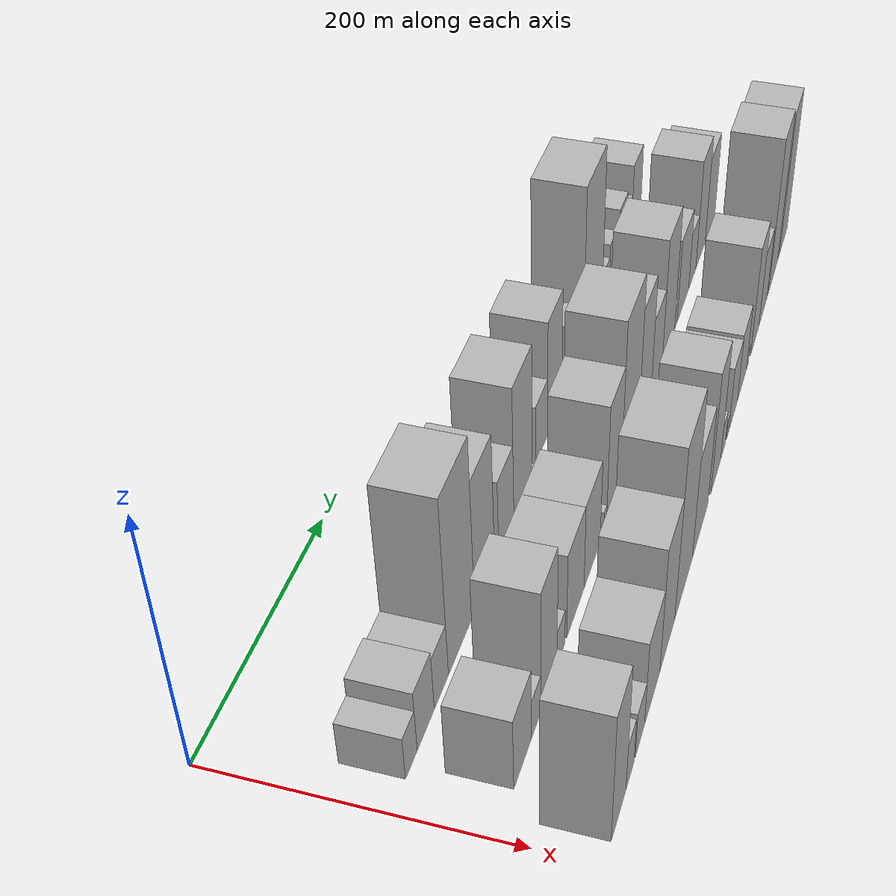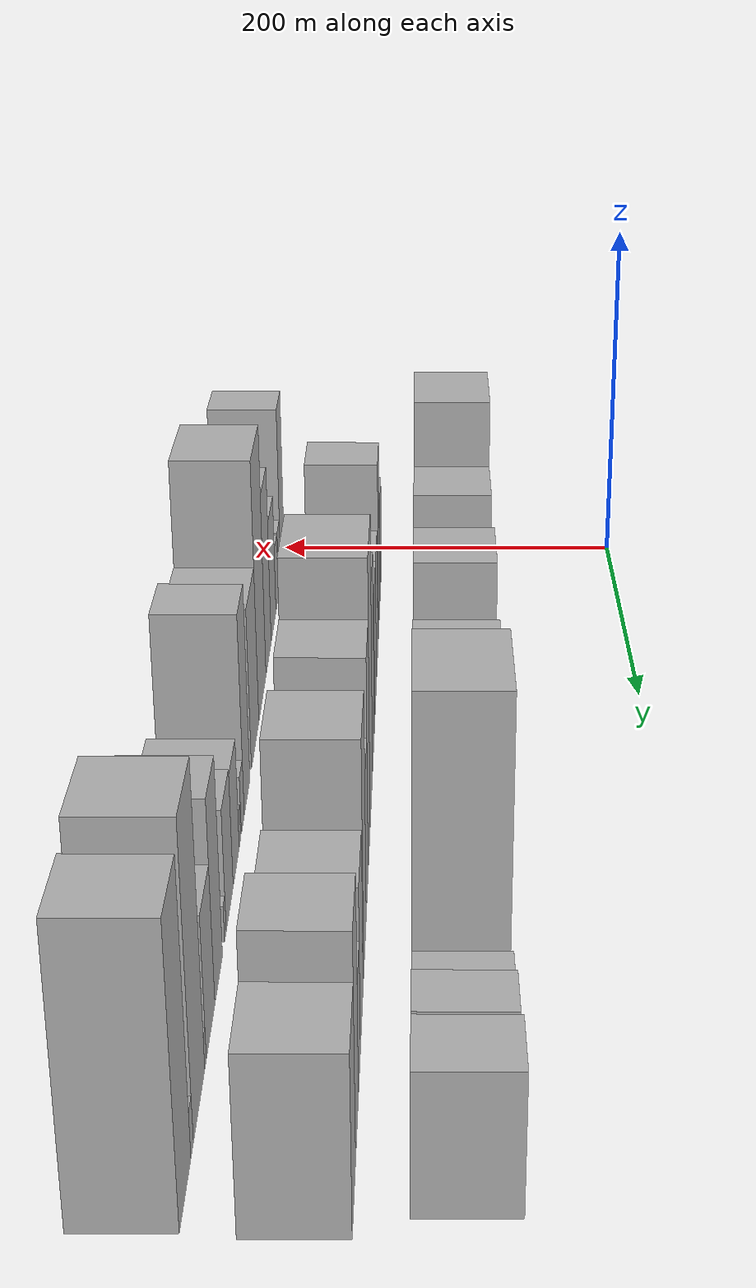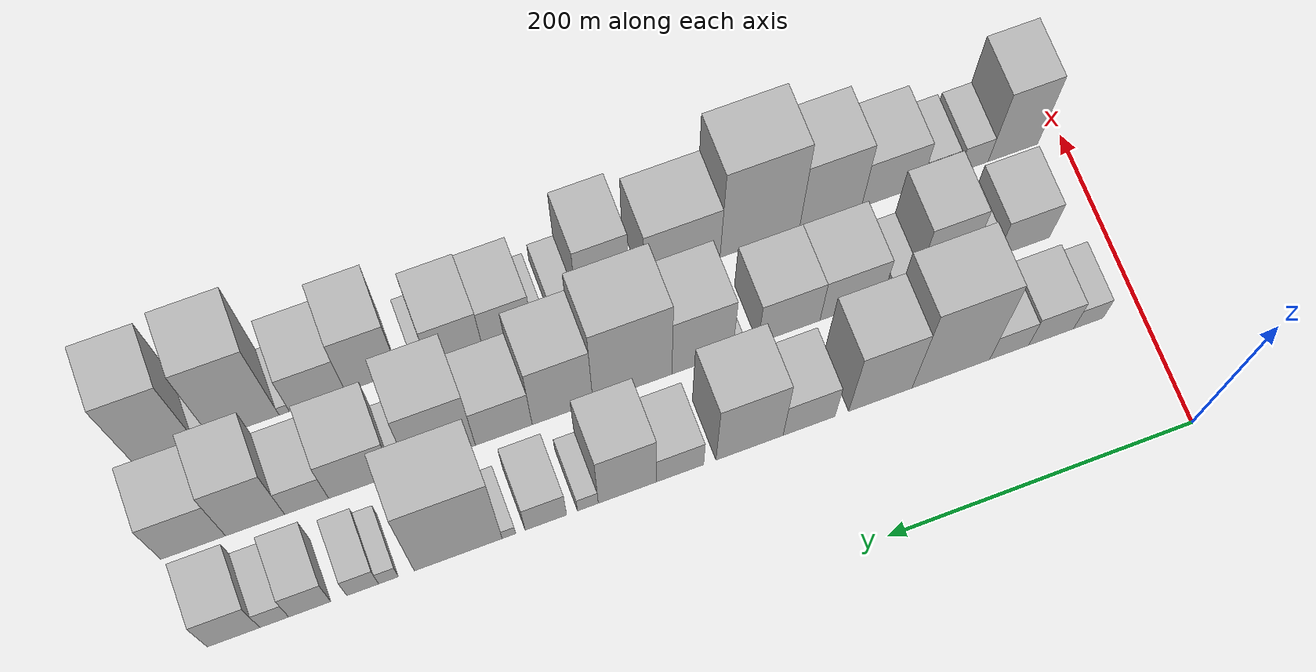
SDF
<sdf version="1.6">
 <world name="default">
  <model name="building_20">
   <static>1</static>
   <pose>100.0000 33.8329 0 0.000000 0.000000 0.000000</pose>
   <link name="link">
    <pose>0 0 18.00 0 0 0</pose>
    <collision name="collision"><geometry><box><size>40.0000 19.9525 36.0000</size></box></geometry></collision>
    <visual name="visual">
     <cast_shadows>0</cast_shadows>
     <geometry><box><size>40.0000 19.9525 36.0000</size></box></geometry>
     <material>
      <script>
       <uri>model://HANNAS_wall/materials/scripts</uri>
       <uri>model://HANNAS_wall/materials/textures</uri>
       <name>vrc/HANNAS_wall</name>
      </script>
     </material>
    </visual>
   </link>
  </model>
  <model name="building_21">
   <static>1</static>
   <pose>100.0000 58.8355 0 0.000000 0.000000 0.000000</pose>
   <link name="link">
    <pose>0 0 25.50 0 0 0</pose>
    <collision name="collision"><geometry><box><size>40.0000 30.0528 51.0000</size></box></geometry></collision>
    <visual name="visual">
     <cast_shadows>0</cast_shadows>
     <geometry><box><size>40.0000 30.0528 51.0000</size></box></geometry>
     <material>
      <script>
       <uri>model://HANNAS_wall/materials/scripts</uri>
       <uri>model://HANNAS_wall/materials/textures</uri>
       <name>vrc/HANNAS_wall</name>
      </script>
     </material>
    </visual>
   </link>
  </model>
  <model name="building_22">
   <static>1</static>
   <pose>100.0000 86.9364 0 0.000000 0.000000 0.000000</pose>
   <link name="link">
    <pose>0 0 22.50 0 0 0</pose>
    <collision name="collision"><geometry><box><size>40.0000 26.1490 45.0000</size></box></geometry></collision>
    <visual name="visual">
     <cast_shadows>0</cast_shadows>
     <geometry><box><size>40.0000 26.1490 45.0000</size></box></geometry>
     <material>
      <script>
       <uri>model://HANNAS_wall/materials/scripts</uri>
       <uri>model://HANNAS_wall/materials/textures</uri>
       <name>vrc/HANNAS_wall</name>
      </script>
     </material>
    </visual>
   </link>
  </model>
  <model name="building_23">
   <static>1</static>
   <pose>100.0000 125.7949 0 0.000000 0.000000 0.000000</pose>
   <link name="link">
    <pose>0 0 73.50 0 0 0</pose>
    <collision name="collision"><geometry><box><size>40.0000 51.5680 147.0000</size></box></geometry></collision>
    <visual name="visual">
     <cast_shadows>0</cast_shadows>
     <geometry><box><size>40.0000 51.5680 147.0000</size></box></geometry>
     <material>
      <script>
       <uri>model://HANNAS_wall/materials/scripts</uri>
       <uri>model://HANNAS_wall/materials/textures</uri>
       <name>vrc/HANNAS_wall</name>
      </script>
     </material>
    </visual>
   </link>
  </model>
  <model name="building_24">
   <static>1</static>
   <pose>100.0000 172.5010 0 0.000000 0.000000 0.000000</pose>
   <link name="link">
    <pose>0 0 55.50 0 0 0</pose>
    <collision name="collision"><geometry><box><size>40.0000 41.8441 111.0000</size></box></geometry></collision>
    <visual name="visual">
     <cast_shadows>0</cast_shadows>
     <geometry><box><size>40.0000 41.8441 111.0000</size></box></geometry>
     <material>
      <script>
       <uri>model://HANNAS_wall/materials/scripts</uri>
       <uri>model://HANNAS_wall/materials/textures</uri>
       <name>vrc/HANNAS_wall</name>
      </script>
     </material>
    </visual>
   </link>
  </model>
  <model name="building_25">
   <static>1</static>
   <pose>100.0000 219.4395 0 0.000000 0.000000 0.000000</pose>
   <link name="link">
    <pose>0 0 31.50 0 0 0</pose>
    <collision name="collision"><geometry><box><size>40.0000 34.0330 63.0000</size></box></geometry></collision>
    <visual name="visual">
     <cast_shadows>0</cast_shadows>
     <geometry><box><size>40.0000 34.0330 63.0000</size></box></geometry>
     <material>
      <script>
       <uri>model://HANNAS_wall/materials/scripts</uri>
       <uri>model://HANNAS_wall/materials/textures</uri>
       <name>vrc/HANNAS_wall</name>
      </script>
     </material>
    </visual>
   </link>
  </model>
  <model name="building_26">
   <static>1</static>
   <pose>100.0000 258.3282 0 0.000000 0.000000 0.000000</pose>
   <link name="link">
    <pose>0 0 55.50 0 0 0</pose>
    <collision name="collision"><geometry><box><size>40.0000 43.7445 111.0000</size></box></geometry></collision>
    <visual name="visual">
     <cast_shadows>0</cast_shadows>
     <geometry><box><size>40.0000 43.7445 111.0000</size></box></geometry>
     <material>
      <script>
       <uri>model://HANNAS_wall/materials/scripts</uri>
       <uri>model://HANNAS_wall/materials/textures</uri>
       <name>vrc/HANNAS_wall</name>
      </script>
     </material>
    </visual>
   </link>
  </model>
  <model name="building_27">
   <static>1</static>
   <pose>100.0000 303.4414 0 0.000000 0.000000 0.000000</pose>
   <link name="link">
    <pose>0 0 25.50 0 0 0</pose>
    <collision name="collision"><geometry><box><size>40.0000 30.4819 51.0000</size></box></geometry></collision>
    <visual name="visual">
     <cast_shadows>0</cast_shadows>
     <geometry><box><size>40.0000 30.4819 51.0000</size></box></geometry>
     <material>
      <script>
       <uri>model://HANNAS_wall/materials/scripts</uri>
       <uri>model://HANNAS_wall/materials/textures</uri>
       <name>vrc/HANNAS_wall</name>
      </script>
     </material>
    </visual>
   </link>
  </model>
  <model name="building_28">
   <static>1</static>
   <pose>100.0000 337.4438 0 0.000000 0.000000 0.000000</pose>
   <link name="link">
    <pose>0 0 49.50 0 0 0</pose>
    <collision name="collision"><geometry><box><size>40.0000 37.5230 99.0000</size></box></geometry></collision>
    <visual name="visual">
     <cast_shadows>0</cast_shadows>
     <geometry><box><size>40.0000 37.5230 99.0000</size></box></geometry>
     <material>
      <script>
       <uri>model://HANNAS_wall/materials/scripts</uri>
       <uri>model://HANNAS_wall/materials/textures</uri>
       <name>vrc/HANNAS_wall</name>
      </script>
     </material>
    </visual>
   </link>
  </model>
  <model name="building_29">
   <static>1</static>
   <pose>100.0000 362.8427 0 0.000000 0.000000 0.000000</pose>
   <link name="link">
    <pose>0 0 13.50 0 0 0</pose>
    <collision name="collision"><geometry><box><size>40.0000 13.2747 27.0000</size></box></geometry></collision>
    <visual name="visual">
     <cast_shadows>0</cast_shadows>
     <geometry><box><size>40.0000 13.2747 27.0000</size></box></geometry>
     <material>
      <script>
       <uri>model://HANNAS_wall/materials/scripts</uri>
       <uri>model://HANNAS_wall/materials/textures</uri>
       <name>vrc/HANNAS_wall</name>
      </script>
     </material>
    </visual>
   </link>
  </model>
  <model name="building_30">
   <static>1</static>
   <pose>100.0000 389.7202 0 0.000000 0.000000 0.000000</pose>
   <link name="link">
    <pose>0 0 25.50 0 0 0</pose>
    <collision name="collision"><geometry><box><size>40.0000 26.4803 51.0000</size></box></geometry></collision>
    <visual name="visual">
     <cast_shadows>0</cast_shadows>
     <geometry><box><size>40.0000 26.4803 51.0000</size></box></geometry>
     <material>
      <script>
       <uri>model://HANNAS_wall/materials/scripts</uri>
       <uri>model://HANNAS_wall/materials/textures</uri>
       <name>vrc/HANNAS_wall</name>
      </script>
     </material>
    </visual>
   </link>
  </model>
  <model name="building_31">
   <static>1</static>
   <pose>100.0000 413.2818 0 0.000000 0.000000 0.000000</pose>
   <link name="link">
    <pose>0 0 9.00 0 0 0</pose>
    <collision name="collision"><geometry><box><size>40.0000 8.6429 18.0000</size></box></geometry></collision>
    <visual name="visual">
     <cast_shadows>0</cast_shadows>
     <geometry><box><size>40.0000 8.6429 18.0000</size></box></geometry>
     <material>
      <script>
       <uri>model://HANNAS_wall/materials/scripts</uri>
       <uri>model://HANNAS_wall/materials/textures</uri>
       <name>vrc/HANNAS_wall</name>
      </script>
     </material>
    </visual>
   </link>
  </model>
  <model name="building_32">
   <static>1</static>
   <pose>100.0000 445.4660 0 0.000000 0.000000 0.000000</pose>
   <link name="link">
    <pose>0 0 70.50 0 0 0</pose>
    <collision name="collision"><geometry><box><size>40.0000 55.7255 141.0000</size></box></geometry></collision>
    <visual name="visual">
     <cast_shadows>0</cast_shadows>
     <geometry><box><size>40.0000 55.7255 141.0000</size></box></geometry>
     <material>
      <script>
       <uri>model://HANNAS_wall/materials/scripts</uri>
       <uri>model://HANNAS_wall/materials/textures</uri>
       <name>vrc/HANNAS_wall</name>
      </script>
     </material>
    </visual>
   </link>
  </model>
  <model name="building_33">
   <static>1</static>
   <pose>100.0000 489.5801 0 0.000000 0.000000 0.000000</pose>
   <link name="link">
    <pose>0 0 13.50 0 0 0</pose>
    <collision name="collision"><geometry><box><size>40.0000 12.5028 27.0000</size></box></geometry></collision>
    <visual name="visual">
     <cast_shadows>0</cast_shadows>
     <geometry><box><size>40.0000 12.5028 27.0000</size></box></geometry>
     <material>
      <script>
       <uri>model://HANNAS_wall/materials/scripts</uri>
       <uri>model://HANNAS_wall/materials/textures</uri>
       <name>vrc/HANNAS_wall</name>
      </script>
     </material>
    </visual>
   </link>
  </model>
  <model name="building_34">
   <static>1</static>
   <pose>100.0000 505.8345 0 0.000000 0.000000 0.000000</pose>
   <link name="link">
    <pose>0 0 19.50 0 0 0</pose>
    <collision name="collision"><geometry><box><size>40.0000 20.0061 39.0000</size></box></geometry></collision>
    <visual name="visual">
     <cast_shadows>0</cast_shadows>
     <geometry><box><size>40.0000 20.0061 39.0000</size></box></geometry>
     <material>
      <script>
       <uri>model://HANNAS_wall/materials/scripts</uri>
       <uri>model://HANNAS_wall/materials/textures</uri>
       <name>vrc/HANNAS_wall</name>
      </script>
     </material>
    </visual>
   </link>
  </model>
  <model name="building_35">
   <static>1</static>
   <pose>100.0000 538.9718 0 0.000000 0.000000 0.000000</pose>
   <link name="link">
    <pose>0 0 25.50 0 0 0</pose>
    <collision name="collision"><geometry><box><size>40.0000 26.2685 51.0000</size></box></geometry></collision>
    <visual name="visual">
     <cast_shadows>0</cast_shadows>
     <geometry><box><size>40.0000 26.2685 51.0000</size></box></geometry>
     <material>
      <script>
       <uri>model://HANNAS_wall/materials/scripts</uri>
       <uri>model://HANNAS_wall/materials/textures</uri>
       <name>vrc/HANNAS_wall</name>
      </script>
     </material>
    </visual>
   </link>
  </model>
  <model name="building_36">
   <static>1</static>
   <pose>100.0000 561.1480 0 0.000000 0.000000 0.000000</pose>
   <link name="link">
    <pose>0 0 18.00 0 0 0</pose>
    <collision name="collision"><geometry><box><size>40.0000 18.0839 36.0000</size></box></geometry></collision>
    <visual name="visual">
     <cast_shadows>0</cast_shadows>
     <geometry><box><size>40.0000 18.0839 36.0000</size></box></geometry>
     <material>
      <script>
       <uri>model://HANNAS_wall/materials/scripts</uri>
       <uri>model://HANNAS_wall/materials/textures</uri>
       <name>vrc/HANNAS_wall</name>
      </script>
     </material>
    </visual>
   </link>
  </model>
  <model name="building_37">
   <static>1</static>
   <pose>100.0000 586.4755 0 0.000000 0.000000 0.000000</pose>
   <link name="link">
    <pose>0 0 31.50 0 0 0</pose>
    <collision name="collision"><geometry><box><size>40.0000 32.5711 63.0000</size></box></geometry></collision>
    <visual name="visual">
     <cast_shadows>0</cast_shadows>
     <geometry><box><size>40.0000 32.5711 63.0000</size></box></geometry>
     <material>
      <script>
       <uri>model://HANNAS_wall/materials/scripts</uri>
       <uri>model://HANNAS_wall/materials/textures</uri>
       <name>vrc/HANNAS_wall</name>
      </script>
     </material>
    </visual>
   </link>
  </model>
  <model name="building_57">
   <static>1</static>
   <pose>160.0000 51.7332 0 0.000000 0.000000 0.000000</pose>
   <link name="link">
    <pose>0 0 30.00 0 0 0</pose>
    <collision name="collision"><geometry><box><size>40.0000 35.6672 60.0000</size></box></geometry></collision>
    <visual name="visual">
     <cast_shadows>0</cast_shadows>
     <geometry><box><size>40.0000 35.6672 60.0000</size></box></geometry>
     <material>
      <script>
       <uri>model://HANNAS_wall/materials/scripts</uri>
       <uri>model://HANNAS_wall/materials/textures</uri>
       <name>vrc/HANNAS_wall</name>
      </script>
     </material>
    </visual>
   </link>
  </model>
  <model name="building_58">
   <static>1</static>
   <pose>160.0000 79.1567 0 0.000000 0.000000 0.000000</pose>
   <link name="link">
    <pose>0 0 16.50 0 0 0</pose>
    <collision name="collision"><geometry><box><size>40.0000 19.1798 33.0000</size></box></geometry></collision>
    <visual name="visual">
     <cast_shadows>0</cast_shadows>
     <geometry><box><size>40.0000 19.1798 33.0000</size></box></geometry>
     <material>
      <script>
       <uri>model://HANNAS_wall/materials/scripts</uri>
       <uri>model://HANNAS_wall/materials/textures</uri>
       <name>vrc/HANNAS_wall</name>
      </script>
     </material>
    </visual>
   </link>
  </model>
  <model name="building_59">
   <static>1</static>
   <pose>160.0000 106.7141 0 0.000000 0.000000 0.000000</pose>
   <link name="link">
    <pose>0 0 51.00 0 0 0</pose>
    <collision name="collision"><geometry><box><size>40.0000 35.9351 102.0000</size></box></geometry></collision>
    <visual name="visual">
     <cast_shadows>0</cast_shadows>
     <geometry><box><size>40.0000 35.9351 102.0000</size></box></geometry>
     <material>
      <script>
       <uri>model://HANNAS_wall/materials/scripts</uri>
       <uri>model://HANNAS_wall/materials/textures</uri>
       <name>vrc/HANNAS_wall</name>
      </script>
     </material>
    </visual>
   </link>
  </model>
  <model name="building_60">
   <static>1</static>
   <pose>160.0000 133.5646 0 0.000000 0.000000 0.000000</pose>
   <link name="link">
    <pose>0 0 15.00 0 0 0</pose>
    <collision name="collision"><geometry><box><size>40.0000 17.7658 30.0000</size></box></geometry></collision>
    <visual name="visual">
     <cast_shadows>0</cast_shadows>
     <geometry><box><size>40.0000 17.7658 30.0000</size></box></geometry>
     <material>
      <script>
       <uri>model://HANNAS_wall/materials/scripts</uri>
       <uri>model://HANNAS_wall/materials/textures</uri>
       <name>vrc/HANNAS_wall</name>
      </script>
     </material>
    </visual>
   </link>
  </model>
  <model name="building_61">
   <static>1</static>
   <pose>160.0000 167.3708 0 0.000000 0.000000 0.000000</pose>
   <link name="link">
    <pose>0 0 36.00 0 0 0</pose>
    <collision name="collision"><geometry><box><size>40.0000 41.8467 72.0000</size></box></geometry></collision>
    <visual name="visual">
     <cast_shadows>0</cast_shadows>
     <geometry><box><size>40.0000 41.8467 72.0000</size></box></geometry>
     <material>
      <script>
       <uri>model://HANNAS_wall/materials/scripts</uri>
       <uri>model://HANNAS_wall/materials/textures</uri>
       <name>vrc/HANNAS_wall</name>
      </script>
     </material>
    </visual>
   </link>
  </model>
  <model name="building_62">
   <static>1</static>
   <pose>160.0000 208.8437 0 0.000000 0.000000 0.000000</pose>
   <link name="link">
    <pose>0 0 36.00 0 0 0</pose>
    <collision name="collision"><geometry><box><size>40.0000 41.0991 72.0000</size></box></geometry></collision>
    <visual name="visual">
     <cast_shadows>0</cast_shadows>
     <geometry><box><size>40.0000 41.0991 72.0000</size></box></geometry>
     <material>
      <script>
       <uri>model://HANNAS_wall/materials/scripts</uri>
       <uri>model://HANNAS_wall/materials/textures</uri>
       <name>vrc/HANNAS_wall</name>
      </script>
     </material>
    </visual>
   </link>
  </model>
  <model name="building_63">
   <static>1</static>
   <pose>160.0000 242.2658 0 0.000000 0.000000 0.000000</pose>
   <link name="link">
    <pose>0 0 9.00 0 0 0</pose>
    <collision name="collision"><geometry><box><size>40.0000 7.7452 18.0000</size></box></geometry></collision>
    <visual name="visual">
     <cast_shadows>0</cast_shadows>
     <geometry><box><size>40.0000 7.7452 18.0000</size></box></geometry>
     <material>
      <script>
       <uri>model://HANNAS_wall/materials/scripts</uri>
       <uri>model://HANNAS_wall/materials/textures</uri>
       <name>vrc/HANNAS_wall</name>
      </script>
     </material>
    </visual>
   </link>
  </model>
  <model name="building_64">
   <static>1</static>
   <pose>160.0000 266.1142 0 0.000000 0.000000 0.000000</pose>
   <link name="link">
    <pose>0 0 51.00 0 0 0</pose>
    <collision name="collision"><geometry><box><size>40.0000 39.9515 102.0000</size></box></geometry></collision>
    <visual name="visual">
     <cast_shadows>0</cast_shadows>
     <geometry><box><size>40.0000 39.9515 102.0000</size></box></geometry>
     <material>
      <script>
       <uri>model://HANNAS_wall/materials/scripts</uri>
       <uri>model://HANNAS_wall/materials/textures</uri>
       <name>vrc/HANNAS_wall</name>
      </script>
     </material>
    </visual>
   </link>
  </model>
  <model name="building_65">
   <static>1</static>
   <pose>160.0000 311.8025 0 0.000000 0.000000 0.000000</pose>
   <link name="link">
    <pose>0 0 69.00 0 0 0</pose>
    <collision name="collision"><geometry><box><size>40.0000 51.4252 138.0000</size></box></geometry></collision>
    <visual name="visual">
     <cast_shadows>0</cast_shadows>
     <geometry><box><size>40.0000 51.4252 138.0000</size></box></geometry>
     <material>
      <script>
       <uri>model://HANNAS_wall/materials/scripts</uri>
       <uri>model://HANNAS_wall/materials/textures</uri>
       <name>vrc/HANNAS_wall</name>
      </script>
     </material>
    </visual>
   </link>
  </model>
  <model name="building_66">
   <static>1</static>
   <pose>160.0000 357.2261 0 0.000000 0.000000 0.000000</pose>
   <link name="link">
    <pose>0 0 54.00 0 0 0</pose>
    <collision name="collision"><geometry><box><size>40.0000 39.4219 108.0000</size></box></geometry></collision>
    <visual name="visual">
     <cast_shadows>0</cast_shadows>
     <geometry><box><size>40.0000 39.4219 108.0000</size></box></geometry>
     <material>
      <script>
       <uri>model://HANNAS_wall/materials/scripts</uri>
       <uri>model://HANNAS_wall/materials/textures</uri>
       <name>vrc/HANNAS_wall</name>
      </script>
     </material>
    </visual>
   </link>
  </model>
  <model name="building_67">
   <static>1</static>
   <pose>160.0000 395.2734 0 0.000000 0.000000 0.000000</pose>
   <link name="link">
    <pose>0 0 34.50 0 0 0</pose>
    <collision name="collision"><geometry><box><size>40.0000 36.6727 69.0000</size></box></geometry></collision>
    <visual name="visual">
     <cast_shadows>0</cast_shadows>
     <geometry><box><size>40.0000 36.6727 69.0000</size></box></geometry>
     <material>
      <script>
       <uri>model://HANNAS_wall/materials/scripts</uri>
       <uri>model://HANNAS_wall/materials/textures</uri>
       <name>vrc/HANNAS_wall</name>
      </script>
     </material>
    </visual>
   </link>
  </model>
  <model name="building_68">
   <static>1</static>
   <pose>160.0000 435.0414 0 0.000000 0.000000 0.000000</pose>
   <link name="link">
    <pose>0 0 55.50 0 0 0</pose>
    <collision name="collision"><geometry><box><size>40.0000 42.8633 111.0000</size></box></geometry></collision>
    <visual name="visual">
     <cast_shadows>0</cast_shadows>
     <geometry><box><size>40.0000 42.8633 111.0000</size></box></geometry>
     <material>
      <script>
       <uri>model://HANNAS_wall/materials/scripts</uri>
       <uri>model://HANNAS_wall/materials/textures</uri>
       <name>vrc/HANNAS_wall</name>
      </script>
     </material>
    </visual>
   </link>
  </model>
  <model name="building_69">
   <static>1</static>
   <pose>160.0000 460.9383 0 0.000000 0.000000 0.000000</pose>
   <link name="link">
    <pose>0 0 10.50 0 0 0</pose>
    <collision name="collision"><geometry><box><size>40.0000 8.9306 21.0000</size></box></geometry></collision>
    <visual name="visual">
     <cast_shadows>0</cast_shadows>
     <geometry><box><size>40.0000 8.9306 21.0000</size></box></geometry>
     <material>
      <script>
       <uri>model://HANNAS_wall/materials/scripts</uri>
       <uri>model://HANNAS_wall/materials/textures</uri>
       <name>vrc/HANNAS_wall</name>
      </script>
     </material>
    </visual>
   </link>
  </model>
  <model name="building_70">
   <static>1</static>
   <pose>160.0000 486.3875 0 0.000000 0.000000 0.000000</pose>
   <link name="link">
    <pose>0 0 37.50 0 0 0</pose>
    <collision name="collision"><geometry><box><size>40.0000 41.9678 75.0000</size></box></geometry></collision>
    <visual name="visual">
     <cast_shadows>0</cast_shadows>
     <geometry><box><size>40.0000 41.9678 75.0000</size></box></geometry>
     <material>
      <script>
       <uri>model://HANNAS_wall/materials/scripts</uri>
       <uri>model://HANNAS_wall/materials/textures</uri>
       <name>vrc/HANNAS_wall</name>
      </script>
     </material>
    </visual>
   </link>
  </model>
  <model name="building_71">
   <static>1</static>
   <pose>160.0000 521.3006 0 0.000000 0.000000 0.000000</pose>
   <link name="link">
    <pose>0 0 25.50 0 0 0</pose>
    <collision name="collision"><geometry><box><size>40.0000 27.8584 51.0000</size></box></geometry></collision>
    <visual name="visual">
     <cast_shadows>0</cast_shadows>
     <geometry><box><size>40.0000 27.8584 51.0000</size></box></geometry>
     <material>
      <script>
       <uri>model://HANNAS_wall/materials/scripts</uri>
       <uri>model://HANNAS_wall/materials/textures</uri>
       <name>vrc/HANNAS_wall</name>
      </script>
     </material>
    </visual>
   </link>
  </model>
  <model name="building_72">
   <static>1</static>
   <pose>160.0000 553.8544 0 0.000000 0.000000 0.000000</pose>
   <link name="link">
    <pose>0 0 49.50 0 0 0</pose>
    <collision name="collision"><geometry><box><size>40.0000 37.2492 99.0000</size></box></geometry></collision>
    <visual name="visual">
     <cast_shadows>0</cast_shadows>
     <geometry><box><size>40.0000 37.2492 99.0000</size></box></geometry>
     <material>
      <script>
       <uri>model://HANNAS_wall/materials/scripts</uri>
       <uri>model://HANNAS_wall/materials/textures</uri>
       <name>vrc/HANNAS_wall</name>
      </script>
     </material>
    </visual>
   </link>
  </model>
  <model name="building_73">
   <static>1</static>
   <pose>160.0000 592.7865 0 0.000000 0.000000 0.000000</pose>
   <link name="link">
    <pose>0 0 39.00 0 0 0</pose>
    <collision name="collision"><geometry><box><size>40.0000 40.6149 78.0000</size></box></geometry></collision>
    <visual name="visual">
     <cast_shadows>0</cast_shadows>
     <geometry><box><size>40.0000 40.6149 78.0000</size></box></geometry>
     <material>
      <script>
       <uri>model://HANNAS_wall/materials/scripts</uri>
       <uri>model://HANNAS_wall/materials/textures</uri>
       <name>vrc/HANNAS_wall</name>
      </script>
     </material>
    </visual>
   </link>
  </model>
  <model name="building_90">
   <static>1</static>
   <pose>220.0000 33.0218 0 0.000000 0.000000 0.000000</pose>
   <link name="link">
    <pose>0 0 54.00 0 0 0</pose>
    <collision name="collision"><geometry><box><size>40.0000 33.9580 108.0000</size></box></geometry></collision>
    <visual name="visual">
     <cast_shadows>0</cast_shadows>
     <geometry><box><size>40.0000 33.9580 108.0000</size></box></geometry>
     <material>
      <script>
       <uri>model://HANNAS_wall/materials/scripts</uri>
       <uri>model://HANNAS_wall/materials/textures</uri>
       <name>vrc/HANNAS_wall</name>
      </script>
     </material>
    </visual>
   </link>
  </model>
  <model name="building_91">
   <static>1</static>
   <pose>220.0000 59.8357 0 0.000000 0.000000 0.000000</pose>
   <link name="link">
    <pose>0 0 19.50 0 0 0</pose>
    <collision name="collision"><geometry><box><size>40.0000 19.6699 39.0000</size></box></geometry></collision>
    <visual name="visual">
     <cast_shadows>0</cast_shadows>
     <geometry><box><size>40.0000 19.6699 39.0000</size></box></geometry>
     <material>
      <script>
       <uri>model://HANNAS_wall/materials/scripts</uri>
       <uri>model://HANNAS_wall/materials/textures</uri>
       <name>vrc/HANNAS_wall</name>
      </script>
     </material>
    </visual>
   </link>
  </model>
  <model name="building_92">
   <static>1</static>
   <pose>220.0000 84.1290 0 0.000000 0.000000 0.000000</pose>
   <link name="link">
    <pose>0 0 19.50 0 0 0</pose>
    <collision name="collision"><geometry><box><size>40.0000 22.9167 39.0000</size></box></geometry></collision>
    <visual name="visual">
     <cast_shadows>0</cast_shadows>
     <geometry><box><size>40.0000 22.9167 39.0000</size></box></geometry>
     <material>
      <script>
       <uri>model://HANNAS_wall/materials/scripts</uri>
       <uri>model://HANNAS_wall/materials/textures</uri>
       <name>vrc/HANNAS_wall</name>
      </script>
     </material>
    </visual>
   </link>
  </model>
  <model name="building_93">
   <static>1</static>
   <pose>220.0000 115.9054 0 0.000000 0.000000 0.000000</pose>
   <link name="link">
    <pose>0 0 36.00 0 0 0</pose>
    <collision name="collision"><geometry><box><size>40.0000 40.6360 72.0000</size></box></geometry></collision>
    <visual name="visual">
     <cast_shadows>0</cast_shadows>
     <geometry><box><size>40.0000 40.6360 72.0000</size></box></geometry>
     <material>
      <script>
       <uri>model://HANNAS_wall/materials/scripts</uri>
       <uri>model://HANNAS_wall/materials/textures</uri>
       <name>vrc/HANNAS_wall</name>
      </script>
     </material>
    </visual>
   </link>
  </model>
  <model name="building_94">
   <static>1</static>
   <pose>220.0000 157.2072 0 0.000000 0.000000 0.000000</pose>
   <link name="link">
    <pose>0 0 52.50 0 0 0</pose>
    <collision name="collision"><geometry><box><size>40.0000 41.9676 105.0000</size></box></geometry></collision>
    <visual name="visual">
     <cast_shadows>0</cast_shadows>
     <geometry><box><size>40.0000 41.9676 105.0000</size></box></geometry>
     <material>
      <script>
       <uri>model://HANNAS_wall/materials/scripts</uri>
       <uri>model://HANNAS_wall/materials/textures</uri>
       <name>vrc/HANNAS_wall</name>
      </script>
     </material>
    </visual>
   </link>
  </model>
  <model name="building_95">
   <static>1</static>
   <pose>220.0000 204.7571 0 0.000000 0.000000 0.000000</pose>
   <link name="link">
    <pose>0 0 72.00 0 0 0</pose>
    <collision name="collision"><geometry><box><size>40.0000 53.1322 144.0000</size></box></geometry></collision>
    <visual name="visual">
     <cast_shadows>0</cast_shadows>
     <geometry><box><size>40.0000 53.1322 144.0000</size></box></geometry>
     <material>
      <script>
       <uri>model://HANNAS_wall/materials/scripts</uri>
       <uri>model://HANNAS_wall/materials/textures</uri>
       <name>vrc/HANNAS_wall</name>
      </script>
     </material>
    </visual>
   </link>
  </model>
  <model name="building_96">
   <static>1</static>
   <pose>220.0000 256.5679 0 0.000000 0.000000 0.000000</pose>
   <link name="link">
    <pose>0 0 43.50 0 0 0</pose>
    <collision name="collision"><geometry><box><size>40.0000 50.4895 87.0000</size></box></geometry></collision>
    <visual name="visual">
     <cast_shadows>0</cast_shadows>
     <geometry><box><size>40.0000 50.4895 87.0000</size></box></geometry>
     <material>
      <script>
       <uri>model://HANNAS_wall/materials/scripts</uri>
       <uri>model://HANNAS_wall/materials/textures</uri>
       <name>vrc/HANNAS_wall</name>
      </script>
     </material>
    </visual>
   </link>
  </model>
  <model name="building_97">
   <static>1</static>
   <pose>220.0000 309.0079 0 0.000000 0.000000 0.000000</pose>
   <link name="link">
    <pose>0 0 52.50 0 0 0</pose>
    <collision name="collision"><geometry><box><size>40.0000 34.3906 105.0000</size></box></geometry></collision>
    <visual name="visual">
     <cast_shadows>0</cast_shadows>
     <geometry><box><size>40.0000 34.3906 105.0000</size></box></geometry>
     <material>
      <script>
       <uri>model://HANNAS_wall/materials/scripts</uri>
       <uri>model://HANNAS_wall/materials/textures</uri>
       <name>vrc/HANNAS_wall</name>
      </script>
     </material>
    </visual>
   </link>
  </model>
  <model name="building_98">
   <static>1</static>
   <pose>220.0000 334.7311 0 0.000000 0.000000 0.000000</pose>
   <link name="link">
    <pose>0 0 15.00 0 0 0</pose>
    <collision name="collision"><geometry><box><size>40.0000 17.0556 30.0000</size></box></geometry></collision>
    <visual name="visual">
     <cast_shadows>0</cast_shadows>
     <geometry><box><size>40.0000 17.0556 30.0000</size></box></geometry>
     <material>
      <script>
       <uri>model://HANNAS_wall/materials/scripts</uri>
       <uri>model://HANNAS_wall/materials/textures</uri>
       <name>vrc/HANNAS_wall</name>
      </script>
     </material>
    </visual>
   </link>
  </model>
  <model name="building_99">
   <static>1</static>
   <pose>220.0000 351.5652 0 0.000000 0.000000 0.000000</pose>
   <link name="link">
    <pose>0 0 9.00 0 0 0</pose>
    <collision name="collision"><geometry><box><size>40.0000 8.6126 18.0000</size></box></geometry></collision>
    <visual name="visual">
     <cast_shadows>0</cast_shadows>
     <geometry><box><size>40.0000 8.6126 18.0000</size></box></geometry>
     <material>
      <script>
       <uri>model://HANNAS_wall/materials/scripts</uri>
       <uri>model://HANNAS_wall/materials/textures</uri>
       <name>vrc/HANNAS_wall</name>
      </script>
     </material>
    </visual>
   </link>
  </model>
  <model name="building_100">
   <static>1</static>
   <pose>220.0000 372.3129 0 0.000000 0.000000 0.000000</pose>
   <link name="link">
    <pose>0 0 28.50 0 0 0</pose>
    <collision name="collision"><geometry><box><size>40.0000 32.8828 57.0000</size></box></geometry></collision>
    <visual name="visual">
     <cast_shadows>0</cast_shadows>
     <geometry><box><size>40.0000 32.8828 57.0000</size></box></geometry>
     <material>
      <script>
       <uri>model://HANNAS_wall/materials/scripts</uri>
       <uri>model://HANNAS_wall/materials/textures</uri>
       <name>vrc/HANNAS_wall</name>
      </script>
     </material>
    </visual>
   </link>
  </model>
  <model name="building_101">
   <static>1</static>
   <pose>220.0000 406.4653 0 0.000000 0.000000 0.000000</pose>
   <link name="link">
    <pose>0 0 30.00 0 0 0</pose>
    <collision name="collision"><geometry><box><size>40.0000 35.4219 60.0000</size></box></geometry></collision>
    <visual name="visual">
     <cast_shadows>0</cast_shadows>
     <geometry><box><size>40.0000 35.4219 60.0000</size></box></geometry>
     <material>
      <script>
       <uri>model://HANNAS_wall/materials/scripts</uri>
       <uri>model://HANNAS_wall/materials/textures</uri>
       <name>vrc/HANNAS_wall</name>
      </script>
     </material>
    </visual>
   </link>
  </model>
  <model name="building_102">
   <static>1</static>
   <pose>220.0000 428.2239 0 0.000000 0.000000 0.000000</pose>
   <link name="link">
    <pose>0 0 9.00 0 0 0</pose>
    <collision name="collision"><geometry><box><size>40.0000 8.0954 18.0000</size></box></geometry></collision>
    <visual name="visual">
     <cast_shadows>0</cast_shadows>
     <geometry><box><size>40.0000 8.0954 18.0000</size></box></geometry>
     <material>
      <script>
       <uri>model://HANNAS_wall/materials/scripts</uri>
       <uri>model://HANNAS_wall/materials/textures</uri>
       <name>vrc/HANNAS_wall</name>
      </script>
     </material>
    </visual>
   </link>
  </model>
  <model name="building_103">
   <static>1</static>
   <pose>220.0000 459.5600 0 0.000000 0.000000 0.000000</pose>
   <link name="link">
    <pose>0 0 48.00 0 0 0</pose>
    <collision name="collision"><geometry><box><size>40.0000 34.5768 96.0000</size></box></geometry></collision>
    <visual name="visual">
     <cast_shadows>0</cast_shadows>
     <geometry><box><size>40.0000 34.5768 96.0000</size></box></geometry>
     <material>
      <script>
       <uri>model://HANNAS_wall/materials/scripts</uri>
       <uri>model://HANNAS_wall/materials/textures</uri>
       <name>vrc/HANNAS_wall</name>
      </script>
     </material>
    </visual>
   </link>
  </model>
  <model name="building_104">
   <static>1</static>
   <pose>220.0000 494.8452 0 0.000000 0.000000 0.000000</pose>
   <link name="link">
    <pose>0 0 33.00 0 0 0</pose>
    <collision name="collision"><geometry><box><size>40.0000 35.9935 66.0000</size></box></geometry></collision>
    <visual name="visual">
     <cast_shadows>0</cast_shadows>
     <geometry><box><size>40.0000 35.9935 66.0000</size></box></geometry>
     <material>
      <script>
       <uri>model://HANNAS_wall/materials/scripts</uri>
       <uri>model://HANNAS_wall/materials/textures</uri>
       <name>vrc/HANNAS_wall</name>
      </script>
     </material>
    </visual>
   </link>
  </model>
  <model name="building_105">
   <static>1</static>
   <pose>220.0000 516.1052 0 0.000000 0.000000 0.000000</pose>
   <link name="link">
    <pose>0 0 7.50 0 0 0</pose>
    <collision name="collision"><geometry><box><size>40.0000 6.5264 15.0000</size></box></geometry></collision>
    <visual name="visual">
     <cast_shadows>0</cast_shadows>
     <geometry><box><size>40.0000 6.5264 15.0000</size></box></geometry>
     <material>
      <script>
       <uri>model://HANNAS_wall/materials/scripts</uri>
       <uri>model://HANNAS_wall/materials/textures</uri>
       <name>vrc/HANNAS_wall</name>
      </script>
     </material>
    </visual>
   </link>
  </model>
  <model name="building_106">
   <static>1</static>
   <pose>220.0000 540.7784 0 0.000000 0.000000 0.000000</pose>
   <link name="link">
    <pose>0 0 69.00 0 0 0</pose>
    <collision name="collision"><geometry><box><size>40.0000 42.8200 138.0000</size></box></geometry></collision>
    <visual name="visual">
     <cast_shadows>0</cast_shadows>
     <geometry><box><size>40.0000 42.8200 138.0000</size></box></geometry>
     <material>
      <script>
       <uri>model://HANNAS_wall/materials/scripts</uri>
       <uri>model://HANNAS_wall/materials/textures</uri>
       <name>vrc/HANNAS_wall</name>
      </script>
     </material>
    </visual>
   </link>
  </model>
  <model name="building_107">
   <static>1</static>
   <pose>220.0000 566.7253 0 0.000000 0.000000 0.000000</pose>
   <link name="link">
    <pose>0 0 10.50 0 0 0</pose>
    <collision name="collision"><geometry><box><size>40.0000 9.0740 21.0000</size></box></geometry></collision>
    <visual name="visual">
     <cast_shadows>0</cast_shadows>
     <geometry><box><size>40.0000 9.0740 21.0000</size></box></geometry>
     <material>
      <script>
       <uri>model://HANNAS_wall/materials/scripts</uri>
       <uri>model://HANNAS_wall/materials/textures</uri>
       <name>vrc/HANNAS_wall</name>
      </script>
     </material>
    </visual>
   </link>
  </model>
  <model name="building_108">
   <static>1</static>
   <pose>220.0000 590.7950 0 0.000000 0.000000 0.000000</pose>
   <link name="link">
    <pose>0 0 64.50 0 0 0</pose>
    <collision name="collision"><geometry><box><size>40.0000 39.0653 129.0000</size></box></geometry></collision>
    <visual name="visual">
     <cast_shadows>0</cast_shadows>
     <geometry><box><size>40.0000 39.0653 129.0000</size></box></geometry>
     <material>
      <script>
       <uri>model://HANNAS_wall/materials/scripts</uri>
       <uri>model://HANNAS_wall/materials/textures</uri>
       <name>vrc/HANNAS_wall</name>
      </script>
     </material>
    </visual>
   </link>
  </model>
 </world>
</sdf>
